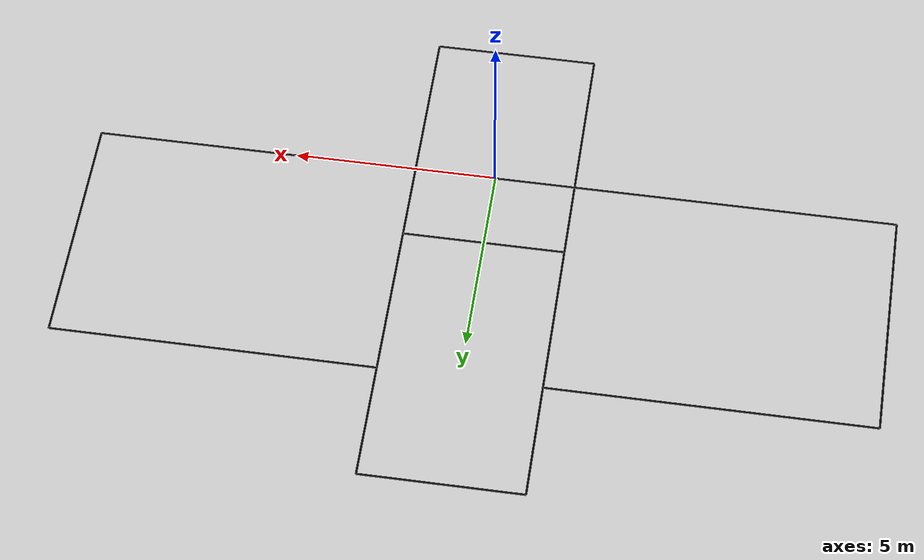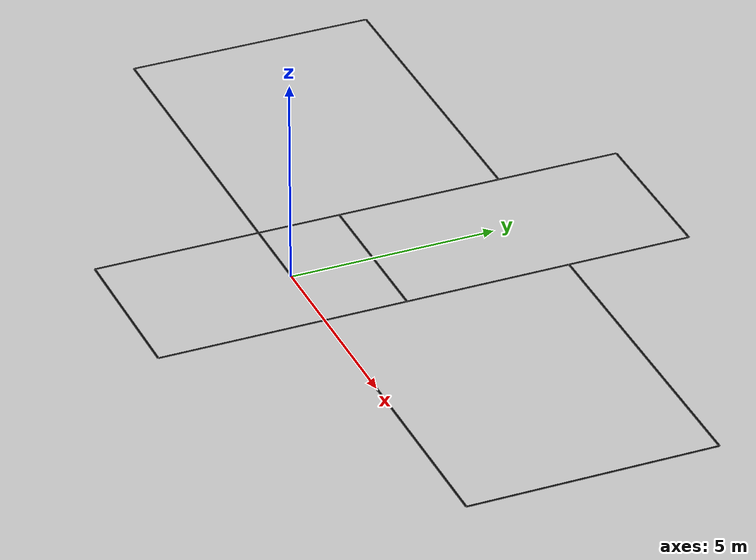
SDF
<?xml version="1.0" ?>
<sdf version="1.7">
  <world name="line_world">
    <include><uri>model://ground_plane</uri></include>
    <include><uri>model://sun</uri></include>

    <model name="seg_AB">
      <static>true</static>
      <pose>0 0 0.01 0 0 0</pose>
      <link name="link">
        <visual name="visual">
          <geometry><box><size>20 0.05 0.01</size></box></geometry>
          <material><ambient>0 0 0 1</ambient><diffuse>0 0 0 1</diffuse></material>
        </visual>
      </link>
    </model>

    <model name="seg_BC">
      <static>true</static>
      <pose>10 3 0.01 0 0 1.5708</pose>
      <link name="link">
        <visual name="visual">
          <geometry><box><size>6 0.05 0.01</size></box></geometry>
          <material><ambient>0 0 0 1</ambient><diffuse>0 0 0 1</diffuse></material>
        </visual>
      </link>
    </model>

    <model name="seg_CD">
      <static>true</static>
      <pose>6 6 0.01 0 0 0</pose>
      <link name="link">
        <visual name="visual">
          <geometry><box><size>8 0.05 0.01</size></box></geometry>
          <material><ambient>0 0 0 1</ambient><diffuse>0 0 0 1</diffuse></material>
        </visual>
      </link>
    </model>

    <model name="seg_DK">
      <static>true</static>
      <pose>2 7.5 0.01 0 0 1.5708</pose>
      <link name="link">
        <visual name="visual">
          <geometry><box><size>3 0.05 0.01</size></box></geometry>
          <material><ambient>0 0 0 1</ambient><diffuse>0 0 0 1</diffuse></material>
        </visual>
      </link>
    </model>

    <model name="seg_KL">
      <static>true</static>
      <pose>0 9 0.01 0 0 0</pose>
      <link name="link">
        <visual name="visual">
          <geometry><box><size>4 0.05 0.01</size></box></geometry>
          <material><ambient>0 0 0 1</ambient><diffuse>0 0 0 1</diffuse></material>
        </visual>
      </link>
    </model>

    <model name="seg_LG">
      <static>true</static>
      <pose>-2 7.5 0.01 0 0 1.5708</pose>
      <link name="link">
        <visual name="visual">
          <geometry><box><size>3 0.05 0.01</size></box></geometry>
          <material><ambient>0 0 0 1</ambient><diffuse>0 0 0 1</diffuse></material>
        </visual>
      </link>
    </model>

    <model name="seg_GH">
      <static>true</static>
      <pose>-6 6 0.01 0 0 0</pose>
      <link name="link">
        <visual name="visual">
          <geometry><box><size>8 0.05 0.01</size></box></geometry>
          <material><ambient>0 0 0 1</ambient><diffuse>0 0 0 1</diffuse></material>
        </visual>
      </link>
    </model>

    <model name="seg_HA">
      <static>true</static>
      <pose>-10 3 0.01 0 0 1.5708</pose>
      <link name="link">
        <visual name="visual">
          <geometry><box><size>6 0.05 0.01</size></box></geometry>
          <material><ambient>0 0 0 1</ambient><diffuse>0 0 0 1</diffuse></material>
        </visual>
      </link>
    </model>

    <model name="seg_DE">
      <static>true</static>
      <pose>2 4 0.01 0 0 1.5708</pose>
      <link name="link">
        <visual name="visual">
          <geometry><box><size>4 0.05 0.01</size></box></geometry>
          <material><ambient>0 0 0 1</ambient><diffuse>0 0 0 1</diffuse></material>
        </visual>
      </link>
    </model>

    <model name="seg_EF">
      <static>true</static>
      <pose>0 2 0.01 0 0 0</pose>
      <link name="link">
        <visual name="visual">
          <geometry><box><size>4 0.05 0.01</size></box></geometry>
          <material><ambient>0 0 0 1</ambient><diffuse>0 0 0 1</diffuse></material>
        </visual>
      </link>
    </model>

    <model name="seg_FG">
      <static>true</static>
      <pose>-2 4 0.01 0 0 1.5708</pose>
      <link name="link">
        <visual name="visual">
          <geometry><box><size>4 0.05 0.01</size></box></geometry>
          <material><ambient>0 0 0 1</ambient><diffuse>0 0 0 1</diffuse></material>
        </visual>
      </link>
    </model>

    <model name="seg_EI">
      <static>true</static>
      <pose>2 -1 0.01 0 0 1.5708</pose>
      <link name="link">
        <visual name="visual">
          <geometry><box><size>6 0.05 0.01</size></box></geometry>
          <material><ambient>0 0 0 1</ambient><diffuse>0 0 0 1</diffuse></material>
        </visual>
      </link>
    </model>

    <model name="seg_IJ">
      <static>true</static>
      <pose>0 -4 0.01 0 0 0</pose>
      <link name="link">
        <visual name="visual">
          <geometry><box><size>4 0.05 0.01</size></box></geometry>
          <material><ambient>0 0 0 1</ambient><diffuse>0 0 0 1</diffuse></material>
        </visual>
      </link>
    </model>

    <model name="seg_JF">
      <static>true</static>
      <pose>-2 -1 0.01 0 0 1.5708</pose>
      <link name="link">
        <visual name="visual">
          <geometry><box><size>6 0.05 0.01</size></box></geometry>
          <material><ambient>0 0 0 1</ambient><diffuse>0 0 0 1</diffuse></material>
        </visual>
      </link>
    </model>

  </world>
</sdf>
